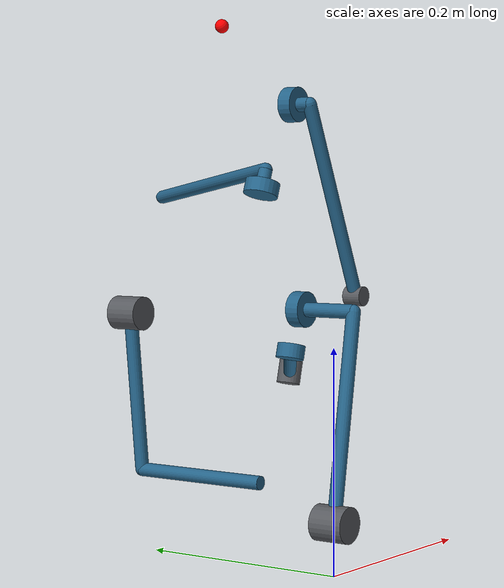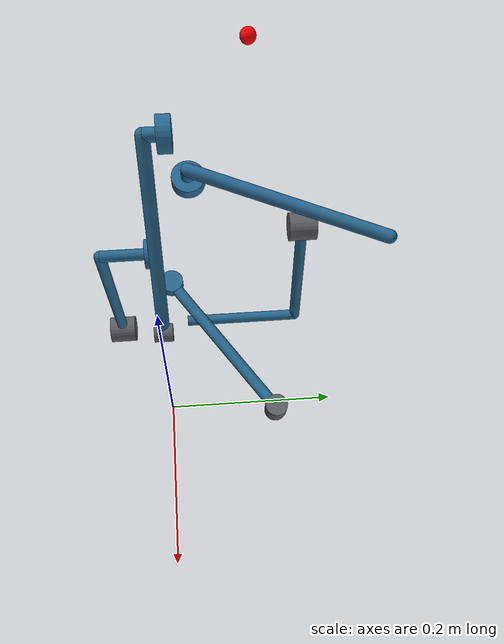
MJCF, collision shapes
<mujoco model="gello_xarm7">
  <compiler angle="radian" autolimits="true" meshdir="meshes" />
  <option timestep="0.002" integrator="implicitfast" gravity="0 0 -9.81" iterations="100" ls_iterations="50" />
  <asset>
    <mesh name="base" file="base.stl" scale="0.001 0.001 0.001" inertia="legacy" />
    <mesh name="L1" file="L1.stl" scale="0.001 0.001 0.001" inertia="legacy" />
    <mesh name="L2" file="L2.stl" scale="0.001 0.001 0.001" inertia="legacy" />
    <mesh name="L3" file="L3.stl" scale="0.001 0.001 0.001" inertia="legacy" />
    <mesh name="L4" file="L4.stl" scale="0.001 0.001 0.001" inertia="legacy" />
    <mesh name="L5" file="L5.stl" scale="0.001 0.001 0.001" inertia="legacy" />
    <mesh name="L6" file="L6.stl" scale="0.001 0.001 0.001" inertia="legacy" />
    <mesh name="handle" file="handle.stl" scale="0.001 0.001 0.001" inertia="legacy" />
    <mesh name="servo" file="servo.stl" scale="0.001 0.001 0.001" inertia="legacy" />
    <mesh name="servo_single" file="servo_single.stl" scale="0.001 0.001 0.001" inertia="legacy" />
    <mesh name="trigger" file="trigger.stl" scale="0.001 0.001 0.001" inertia="legacy" />
  </asset>
  <worldbody>
    <body name="lead_base" pos="0 0 0" quat="0.707106781187 0.707106781187 0 0">
      <geom name="printed_base" type="mesh" mesh="base" density="100" rgba="0.93 0.92 0.88 1" contype="0" conaffinity="0" />
      <geom name="servo1" type="box" pos="-0.063031904581576231 0.022246155186162006 5.8254716867445669e-05" quat="-0.7081666189672351 -0.029588384565016963 -0.70479834485499882 0.029729789252585792" mass="0.018" rgba="0 0 0 0" size="0.009105755772092692 0.011051149327476129 0.015989273239492972" group="3" contype="0" conaffinity="0" />
      <body name="lead_link1" pos="-0.07 0.036 0" quat="4.329780281e-17 -4.329780281e-17 0.7071067812 0.7071067812">
        <joint name="lead_joint1" type="hinge" axis="0 0 1" damping="0.01" armature="0.002" frictionloss="0.03" range="-6.28319 6.28319" stiffness="0.0021480154485271057" springref="6.283189999999999" />
        <geom name="printed_link1" type="mesh" mesh="L1" pos="0 0.006 -0.0025" quat="1 0 0 0" density="100" rgba="0.93 0.92 0.88 1" contype="0" conaffinity="0" />
        <geom name="servo2" type="box" pos="-5.8254716867520228e-05 -0.0037461551861527245 0.0465319045815673" quat="-0.041944282954056056 0.9991171074983457 9.9988213471535661e-05 -0.0023817294656588617" mass="0.018" rgba="0 0 0 0" size="0.009105755772092692 0.011051149327476129 0.015989273239492972" group="3" contype="0" conaffinity="0" />
        <body name="lead_link2" pos="0 -0.0175 0.0535" quat="0.08710586609 0.08710586609 0.701721147 -0.701721147">
          <joint name="lead_joint2" type="hinge" axis="0 0 1" damping="0.01" armature="0.002" frictionloss="0.03" range="-2.059 2.0944" stiffness="0.8811288099332145" springref="-0.17528749706169544" />
          <geom name="printed_link2" type="mesh" mesh="L2" pos="0 -0.089 -0.0265" quat="0.707106781187 0.707106781187 0 0" density="100" rgba="0.93 0.92 0.88 1" contype="0" conaffinity="0" />
          <geom name="servo3" type="box" pos="-5.8254716867520228e-05 -0.091546155186152722 -0.0084680954184326983" quat="-0.041944282954056056 0.9991171074983457 9.9988213471535661e-05 -0.0023817294656588617" mass="0.018" rgba="0 0 0 0" size="0.009105755772092692 0.011051149327476129 0.015989273239492972" group="3" contype="0" conaffinity="0" />
          <body name="lead_link3" pos="0 -0.1053 -0.0015" quat="0.5 0.5 -0.5 0.5">
            <joint name="lead_joint3" type="hinge" axis="0 0 1" damping="0.01" armature="0.002" frictionloss="0.03" range="-6.28319 6.28319" stiffness="0.0005706757448735584" springref="6.28319" />
            <geom name="printed_link3" type="mesh" mesh="L3" pos="0 0 -0.0025" quat="1 0 0 0" density="100" rgba="0.93 0.92 0.88 1" contype="0" conaffinity="0" />
            <geom name="servo4" type="box" pos="0.0038538448138414698 0.015306998172749732 0.035570150100144693" quat="0.14354157152780062 0.69252842332486608 -0.67779000570922743 0.20099977186969886" mass="0.018" rgba="0 0 0 0" size="0.009105755772092692 0.011051149327476129 0.015989273239492972" group="3" contype="0" conaffinity="0" />
            <body name="lead_link4" pos="-0.0099 0.0185806907019 0.041721628345" quat="0.6353217583 0.3104291601 -0.6353217583 -0.3104291601">
              <joint name="lead_joint4" type="hinge" axis="0 0 1" damping="0.01" armature="0.002" frictionloss="0.03" range="-0.19198 3.927" stiffness="0.003074896849835136" springref="-0.19198" />
              <geom name="printed_link4" type="mesh" mesh="L4" pos="0 -0.01 0.0125" quat="0.707106781187 0 -0.707106781187 0" density="100" rgba="0.93 0.92 0.88 1" contype="0" conaffinity="0" />
              <geom name="servo5" type="box" pos="0.034795347369419791 0.070077028978307268 -0.03594174528313257" quat="0.64799465911421184 0.28583901078990109 0.64491258269786678 -0.28720505278948738" mass="0.018" rgba="0 0 0 0" size="0.009105755772092692 0.011051149327476129 0.015989273239492972" group="3" contype="0" conaffinity="0" />
              <body name="lead_link5" pos="0.0390793045995 0.0848881839426 -0.036" quat="0.6484593974 -0.2819581706 0.6484593974 0.2819581706">
                <joint name="lead_joint5" type="hinge" axis="0 0 1" damping="0.01" armature="0.002" frictionloss="0.03" range="-6.28319 6.28319" stiffness="0.0017297554477134814" springref="-6.28319" />
                <geom name="printed_link5" type="mesh" mesh="L5" pos="-0.001 0 0.08375" quat="0.707106781187 -0.707106781187 0 0" density="100" rgba="0.93 0.92 0.88 1" contype="0" conaffinity="0" />
                <geom name="servo6" type="box" pos="0.0064538448138379903 5.8254716867445669e-05 0.07678190458157623" quat="-0.031343223964919481 0.70655318425490132 -0.70641177956733259 0.027974949852683229" mass="0.018" rgba="0 0 0 0" size="0.009105755772092692 0.011051149327476129 0.015989273239492972" group="3" contype="0" conaffinity="0" />
                <body name="lead_link6" pos="-0.0073 0 0.08375" quat="-0.1425409696 0.6925908402 0.1425409696 -0.6925908402">
                  <joint name="lead_joint6" type="hinge" axis="0 0 1" damping="0.01" armature="0.002" frictionloss="0.03" range="-1.69297 3.14159" stiffness="-0.0" springref="0" />
                  <geom name="printed_link6" type="mesh" mesh="L6" pos="-0.015 -0.015 -0.0025" quat="0.707106781187 0 -0.707106781187 0" density="100" rgba="0.93 0.92 0.88 1" contype="0" conaffinity="0" />
                  <geom name="servo7" type="box" pos="-0.031355904581576215 -0.043546155186162006 -5.8254716867445669e-05" quat="-0.029588384565016963 0.7081666189672351 0.029729789252585792 0.70479834485499882" mass="0.018" rgba="0 0 0 0" size="0.009105755772092692 0.011051149327476129 0.015989273239492972" group="3" contype="0" conaffinity="0" />
                  <body name="lead_link7" pos="-0.038324 -0.0573 0" quat="0.5 0.5 -0.5 0.5">
                    <joint name="lead_joint7" type="hinge" axis="0 0 1" damping="0.01" armature="0.002" frictionloss="0.03" range="-6.28319 6.28319" stiffness="0.0015478596085639878" springref="-6.283190000000001" />
                    <geom name="servo_trigger" type="box" pos="0.0071798025054070702 -0.0061380185847465345 0.024108854279015188" quat="0.72536681421762084 0.04830396691213755 0.68498946542390515 -0.047949388640871837" mass="0.018" rgba="0 0 0 0" size="0.009105755772092692 0.011051149327476129 0.015989273239492972" group="3" contype="0" conaffinity="0" />
                    <geom name="visual_servo_trigger" type="mesh" mesh="servo_single" pos="0.00061347460766 0.00146990767716 0.0236859974613" quat="0.525482745499 -0.5 0.5 0.473146789256" mass="0" rgba="0.12 0.12 0.14 1" contype="0" conaffinity="0" />
                    <body name="lead_handle">
                      <geom name="printed_handle" type="mesh" mesh="handle" pos="0.0142112544868 -0.000744780288481 0.0217163417801" quat="0.707106781187 0.706137715918 -0.0370071095593 0" density="450" rgba="0.93 0.92 0.88 1" contype="0" conaffinity="0" />
                      <body name="lead_trigger" pos="0.000953658323239 0.00796099965307 0.0236859974613" quat="0.525482745499 -0.5 0.5 0.473146789256">
                        <geom name="printed_trigger" type="mesh" mesh="trigger" pos="0 0 -0.008" quat="0.707106781187 0.707106781187 0 0" density="100" rgba="0.93 0.92 0.88 1" contype="0" conaffinity="0" />
                      </body>
                      <site name="lead_ee_site" pos="-0.0576480385247 0.0030212056791 -7.95146511684e-05" size="0.006" rgba="1 0 0 1" />
                    </body>
                  </body>
                  <geom name="visual_servo7" type="mesh" mesh="servo_single" pos="-0.038324 -0.0508 0" quat="0.5 0.5 -0.5 0.5" mass="0" rgba="0.12 0.12 0.14 1" contype="0" conaffinity="0" />
                  <geom name="printed_balance_hub_6" type="cylinder" size="0.015 0.006" pos="0 0 0.008" density="650" rgba=".15 .4 .55 1" contype="0" conaffinity="0" />
                  <geom name="printed_balance_standoff_6" type="cylinder" size=".006" fromto="0 0 0.008 0 0 0.025" density="650" rgba=".15 .4 .55 1" contype="0" conaffinity="0" />
                  <geom name="printed_balance_support_6" type="capsule" size=".006" fromto="0.0 0.0 0.025 0.07409201612500624 0.16590798387499375 0.025" density="650" rgba=".15 .4 .55 1" contype="0" conaffinity="0" />
                  <geom name="counterweight_6" type="cylinder" size="0.00863009693202 0.00863009693202" pos="0.07409201612500624 0.16590798387499375 0.025" density="7800" rgba=".35 .36 .38 1" contype="0" conaffinity="0" />
                </body>
                <geom name="visual_servo6" type="mesh" mesh="servo_single" pos="-0.0008 0 0.08375" quat="0.5 0.5 -0.5 -0.5" mass="0" rgba="0.12 0.12 0.14 1" contype="0" conaffinity="0" />
                <geom name="printed_balance_hub_5" type="cylinder" size="0.015 0.006" pos="0 0 0.008" density="650" rgba=".15 .4 .55 1" contype="0" conaffinity="0" />
                <geom name="printed_balance_standoff_5" type="cylinder" size=".006" fromto="0 0 0.008 0 0 0.025" density="650" rgba=".15 .4 .55 1" contype="0" conaffinity="0" />
                <geom name="printed_balance_support_5" type="capsule" size=".006" fromto="0.0 0.0 0.025 0.16888773010131877 -0.07111226989868195 0.025" density="650" rgba=".15 .4 .55 1" contype="0" conaffinity="0" />
                <geom name="counterweight_5" type="cylinder" size="0.00427449400947 0.00427449400947" pos="0.16888773010131877 -0.07111226989868195 0.025" density="7800" rgba=".35 .36 .38 1" contype="0" conaffinity="0" />
              </body>
              <geom name="visual_servo5" type="mesh" mesh="servo_single" pos="0.0346463152591 0.080134384882 -0.036" quat="0.648459397353 -0.281958170629 0.648459397353 0.281958170629" mass="0" rgba="0.12 0.12 0.14 1" contype="0" conaffinity="0" />
              <geom name="printed_balance_hub_4" type="cylinder" size="0.015 0.006" pos="0 0 0.008" density="650" rgba=".15 .4 .55 1" contype="0" conaffinity="0" />
              <geom name="printed_balance_standoff_4" type="cylinder" size=".006" fromto="0 0 0.008 0 0 0.06" density="650" rgba=".15 .4 .55 1" contype="0" conaffinity="0" />
              <geom name="printed_balance_support_4" type="capsule" size=".006" fromto="0.0 0.0 0.06 -0.09469216689835652 -0.14530783310164366 0.06" density="650" rgba=".15 .4 .55 1" contype="0" conaffinity="0" />
              <geom name="counterweight_4" type="cylinder" size="0.0152148636623 0.0152148636623" pos="-0.09469216689835652 -0.14530783310164366 0.06" density="7800" rgba=".35 .36 .38 1" contype="0" conaffinity="0" />
            </body>
            <geom name="visual_servo4" type="mesh" mesh="servo_single" pos="-0.0034 0.0185806907019 0.041721628345" quat="0.607692101368 0.361538808339 -0.607692101368 -0.361538808339" mass="0" rgba="0.12 0.12 0.14 1" contype="0" conaffinity="0" />
            <geom name="printed_balance_hub_3" type="cylinder" size="0.012 0.006" pos="0 0 0.008" density="650" rgba=".15 .4 .55 1" contype="0" conaffinity="0" />
            <geom name="printed_balance_support_3" type="capsule" size=".006" fromto="0.0 0.0 0.008 0.09814080027676461 -0.14185919972323574 0.008" density="650" rgba=".15 .4 .55 1" contype="0" conaffinity="0" />
            <geom name="counterweight_3" type="cylinder" size="0.0110105013538 0.0110105013538" pos="0.09814080027676461 -0.14185919972323574 0.008" density="7800" rgba=".35 .36 .38 1" contype="0" conaffinity="0" />
          </body>
          <geom name="visual_servo3" type="mesh" mesh="servo_single" pos="0 -0.0988 -0.0015" quat="0.707106781187 0.707106781187 0 0" mass="0" rgba="0.12 0.12 0.14 1" contype="0" conaffinity="0" />
          <geom name="printed_balance_shoulder_spindle" type="cylinder" size=".006" fromto="0.0 0.0 0.01 0.0 0.0 0.14" density="650" rgba=".15 .4 .55 1" contype="0" conaffinity="0" />
          <geom name="printed_balance_shoulder_support" type="capsule" size=".006" fromto="0.0 0.0 0.14 -0.04822332915215859 -0.1317766708478414 0.14" density="650" rgba=".15 .4 .55 1" contype="0" conaffinity="0" />
          <geom name="counterweight_2" type="cylinder" size="0.0146635634871 0.0146635634871" pos="-0.04822332915215859 -0.1317766708478414 0.14" density="7800" rgba=".35 .36 .38 1" contype="0" conaffinity="0" />
        </body>
        <geom name="visual_servo2" type="mesh" mesh="servo_single" pos="0 -0.011 0.0535" quat="0.707106781187 0.707106781187 0 0" mass="0" rgba="0.12 0.12 0.14 1" contype="0" conaffinity="0" />
      </body>
      <geom name="visual_servo1" type="mesh" mesh="servo_single" pos="-0.07 0.0295 0" quat="-0.5 0.5 -0.5 -0.5" mass="0" rgba="0.12 0.12 0.14 1" contype="0" conaffinity="0" />
    </body>
  </worldbody>
  <keyframe>
    <key name="home" qpos="0 -0.247 0 0.909 0 1.15644 0" />
  </keyframe>
</mujoco>
